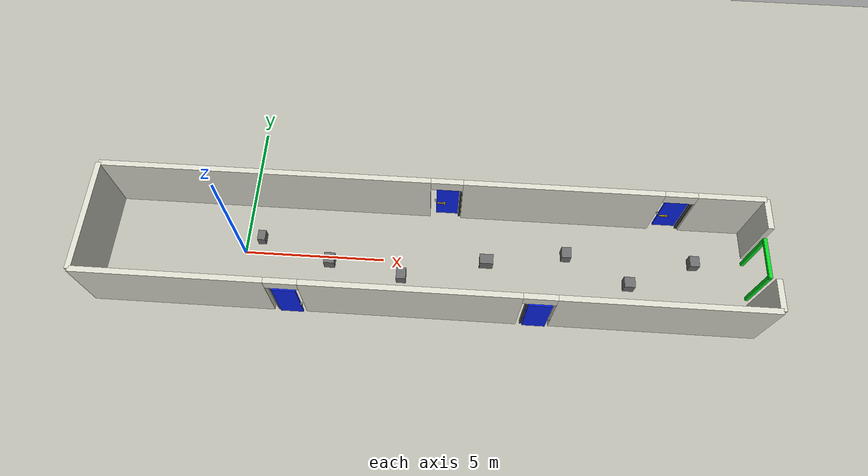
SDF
<?xml version='1.0' encoding='utf-8'?>
<sdf version="1.6">
  <world name="fire_corridor">
    <physics name="default_physics" type="ode">
      <max_step_size>0.001</max_step_size>
      <real_time_update_rate>1000</real_time_update_rate>
    </physics>
    <plugin name="gz::sim::systems::Physics" filename="gz-sim-physics-system" />
    <plugin name="gz::sim::systems::UserCommands" filename="gz-sim-user-commands-system" />
    <plugin name="gz::sim::systems::SceneBroadcaster" filename="gz-sim-scene-broadcaster-system" />
    <plugin name="gz::sim::systems::Sensors" filename="gz-sim-sensors-system">
      <render_engine>ogre2</render_engine>
    </plugin>
    <light type="directional" name="sun">
      <cast_shadows>true</cast_shadows>
      <pose>6 0 10 0 0 0</pose>
      <diffuse>0.9 0.9 0.9 1</diffuse>
      <specular>0.3 0.3 0.3 1</specular>
      <direction>-0.5 0.1 -1</direction>
    </light>
    <light type="point" name="light_mid">
      <pose>8 0 2.8 0 0 0</pose>
      <diffuse>0.8 0.8 0.8 1</diffuse>
      <specular>0.1 0.1 0.1 1</specular>
      <attenuation>
        <range>16</range>
        <linear>0.05</linear>
      </attenuation>
    </light>
    <model name="ground_plane">
      <static>true</static>
      <link name="link">
        <collision name="col">
          <geometry>
            <plane>
              <normal>0 0 1</normal>
              <size>30 10</size>
            </plane>
          </geometry>
        </collision>
        <visual name="vis">
          <geometry>
            <plane>
              <normal>0 0 1</normal>
              <size>30 10</size>
            </plane>
          </geometry>
          <material>
            <ambient>0.72 0.72 0.68 1</ambient>
            <diffuse>0.72 0.72 0.68 1</diffuse>
          </material>
        </visual>
      </link>
    </model>
    <model name="wall_south">
      <static>true</static>
      <pose>6.50 -2.00 1.25 0 0 0</pose>
      <link name="link">
        <collision name="collision_wall_0">
          <geometry>
            <box>
              <size>6.388571 0.200000 2.500000</size>
            </box>
          </geometry>
          <pose>-8.305714 0 0.000000 0 0 0</pose>
        </collision>
        <visual name="visual_wall_0">
          <geometry>
            <box>
              <size>6.388571 0.200000 2.500000</size>
            </box>
          </geometry>
          <material>
            <ambient>0.85 0.85 0.80 1</ambient>
            <diffuse>0.85 0.85 0.80 1</diffuse>
          </material>
          <pose>-8.305714 0 0.000000 0 0 0</pose>
        </visual>
        <collision name="collision_lintel_0">
          <geometry>
            <box>
              <size>1.116429 0.200000 0.450000</size>
            </box>
          </geometry>
          <pose>-4.553214 0 1.025000 0 0 0</pose>
        </collision>
        <visual name="visual_lintel_0">
          <geometry>
            <box>
              <size>1.116429 0.200000 0.450000</size>
            </box>
          </geometry>
          <material>
            <ambient>0.85 0.85 0.80 1</ambient>
            <diffuse>0.85 0.85 0.80 1</diffuse>
          </material>
          <pose>-4.553214 0 1.025000 0 0 0</pose>
        </visual>
        <collision name="collision_wall_1">
          <geometry>
            <box>
              <size>7.283571 0.200000 2.500000</size>
            </box>
          </geometry>
          <pose>-0.353214 0 0.000000 0 0 0</pose>
        </collision>
        <visual name="visual_wall_1">
          <geometry>
            <box>
              <size>7.283571 0.200000 2.500000</size>
            </box>
          </geometry>
          <material>
            <ambient>0.85 0.85 0.80 1</ambient>
            <diffuse>0.85 0.85 0.80 1</diffuse>
          </material>
          <pose>-0.353214 0 0.000000 0 0 0</pose>
        </visual>
        <collision name="collision_lintel_1">
          <geometry>
            <box>
              <size>1.116429 0.200000 0.450000</size>
            </box>
          </geometry>
          <pose>3.846786 0 1.025000 0 0 0</pose>
        </collision>
        <visual name="visual_lintel_1">
          <geometry>
            <box>
              <size>1.116429 0.200000 0.450000</size>
            </box>
          </geometry>
          <material>
            <ambient>0.85 0.85 0.80 1</ambient>
            <diffuse>0.85 0.85 0.80 1</diffuse>
          </material>
          <pose>3.846786 0 1.025000 0 0 0</pose>
        </visual>
        <collision name="collision_wall_end">
          <geometry>
            <box>
              <size>7.095000 0.200000 2.500000</size>
            </box>
          </geometry>
          <pose>7.952500 0 0.000000 0 0 0</pose>
        </collision>
        <visual name="visual_wall_end">
          <geometry>
            <box>
              <size>7.095000 0.200000 2.500000</size>
            </box>
          </geometry>
          <material>
            <ambient>0.85 0.85 0.80 1</ambient>
            <diffuse>0.85 0.85 0.80 1</diffuse>
          </material>
          <pose>7.952500 0 0.000000 0 0 0</pose>
        </visual>
      </link>
    </model>
    <model name="wall_north">
      <static>true</static>
      <pose>6.50 2.00 1.25 0 0 0</pose>
      <link name="link">
        <collision name="collision_wall_0">
          <geometry>
            <box>
              <size>11.588571 0.200000 2.500000</size>
            </box>
          </geometry>
          <pose>-5.705714 0 0.000000 0 0 0</pose>
        </collision>
        <visual name="visual_wall_0">
          <geometry>
            <box>
              <size>11.588571 0.200000 2.500000</size>
            </box>
          </geometry>
          <material>
            <ambient>0.85 0.85 0.80 1</ambient>
            <diffuse>0.85 0.85 0.80 1</diffuse>
          </material>
          <pose>-5.705714 0 0.000000 0 0 0</pose>
        </visual>
        <collision name="collision_lintel_0">
          <geometry>
            <box>
              <size>1.116429 0.200000 0.450000</size>
            </box>
          </geometry>
          <pose>0.646786 0 1.025000 0 0 0</pose>
        </collision>
        <visual name="visual_lintel_0">
          <geometry>
            <box>
              <size>1.116429 0.200000 0.450000</size>
            </box>
          </geometry>
          <material>
            <ambient>0.85 0.85 0.80 1</ambient>
            <diffuse>0.85 0.85 0.80 1</diffuse>
          </material>
          <pose>0.646786 0 1.025000 0 0 0</pose>
        </visual>
        <collision name="collision_wall_1">
          <geometry>
            <box>
              <size>6.883571 0.200000 2.500000</size>
            </box>
          </geometry>
          <pose>4.646786 0 0.000000 0 0 0</pose>
        </collision>
        <visual name="visual_wall_1">
          <geometry>
            <box>
              <size>6.883571 0.200000 2.500000</size>
            </box>
          </geometry>
          <material>
            <ambient>0.85 0.85 0.80 1</ambient>
            <diffuse>0.85 0.85 0.80 1</diffuse>
          </material>
          <pose>4.646786 0 0.000000 0 0 0</pose>
        </visual>
        <collision name="collision_lintel_1">
          <geometry>
            <box>
              <size>1.116429 0.200000 0.450000</size>
            </box>
          </geometry>
          <pose>8.646786 0 1.025000 0 0 0</pose>
        </collision>
        <visual name="visual_lintel_1">
          <geometry>
            <box>
              <size>1.116429 0.200000 0.450000</size>
            </box>
          </geometry>
          <material>
            <ambient>0.85 0.85 0.80 1</ambient>
            <diffuse>0.85 0.85 0.80 1</diffuse>
          </material>
          <pose>8.646786 0 1.025000 0 0 0</pose>
        </visual>
        <collision name="collision_wall_end">
          <geometry>
            <box>
              <size>2.295000 0.200000 2.500000</size>
            </box>
          </geometry>
          <pose>10.352500 0 0.000000 0 0 0</pose>
        </collision>
        <visual name="visual_wall_end">
          <geometry>
            <box>
              <size>2.295000 0.200000 2.500000</size>
            </box>
          </geometry>
          <material>
            <ambient>0.85 0.85 0.80 1</ambient>
            <diffuse>0.85 0.85 0.80 1</diffuse>
          </material>
          <pose>10.352500 0 0.000000 0 0 0</pose>
        </visual>
      </link>
    </model>
    <model name="wall_west">
      <static>true</static>
      <pose>-5.00 0.00 1.25 0 0 0</pose>
      <link name="link">
        <collision name="col">
          <geometry>
            <box>
              <size>0.200 4.000 2.500</size>
            </box>
          </geometry>
        </collision>
        <visual name="vis">
          <geometry>
            <box>
              <size>0.200 4.000 2.500</size>
            </box>
          </geometry>
          <material>
            <ambient>0.85 0.85 0.80 1</ambient>
            <diffuse>0.85 0.85 0.80 1</diffuse>
          </material>
        </visual>
      </link>
    </model>
    <model name="wall_east_upper">
      <static>true</static>
      <pose>18.00 1.45 1.25 0 0 0</pose>
      <link name="link">
        <collision name="col">
          <geometry>
            <box>
              <size>0.200 1.100 2.500</size>
            </box>
          </geometry>
        </collision>
        <visual name="vis">
          <geometry>
            <box>
              <size>0.200 1.100 2.500</size>
            </box>
          </geometry>
          <material>
            <ambient>0.85 0.85 0.80 1</ambient>
            <diffuse>0.85 0.85 0.80 1</diffuse>
          </material>
        </visual>
      </link>
    </model>
    <model name="wall_east_lower">
      <static>true</static>
      <pose>18.00 -1.45 1.25 0 0 0</pose>
      <link name="link">
        <collision name="col">
          <geometry>
            <box>
              <size>0.200 1.100 2.500</size>
            </box>
          </geometry>
        </collision>
        <visual name="vis">
          <geometry>
            <box>
              <size>0.200 1.100 2.500</size>
            </box>
          </geometry>
          <material>
            <ambient>0.85 0.85 0.80 1</ambient>
            <diffuse>0.85 0.85 0.80 1</diffuse>
          </material>
        </visual>
      </link>
    </model>
    <model name="door_red1">
      <static>true</static>
      <pose>4.80 -1.86 1.0 0 0 0</pose>
      <link name="link">
        <visual name="panel">
          <geometry>
            <box>
              <size>0.85 0.045 2.0</size>
            </box>
          </geometry>
          <material>
            <ambient>0.92 0.04 0.04 1</ambient>
            <diffuse>0.92 0.04 0.04 1</diffuse>
          </material>
        </visual>
      </link>
    </model>
    <model name="handle_red1">
      <static>true</static>
      <pose>5.04 -1.82 0.95 1.5708 0 0</pose>
      <link name="link">
        <visual name="handle">
          <geometry>
            <cylinder>
              <radius>0.018</radius>
              <length>0.13</length>
            </cylinder>
          </geometry>
          <material>
            <ambient>0.75 0.60 0.05 1</ambient>
            <diffuse>0.75 0.60 0.05 1</diffuse>
          </material>
        </visual>
      </link>
    </model>
    <model name="door_red2">
      <static>true</static>
      <pose>12.90 -1.86 1.0 0 0 0</pose>
      <link name="link">
        <visual name="panel">
          <geometry>
            <box>
              <size>0.85 0.045 2.0</size>
            </box>
          </geometry>
          <material>
            <ambient>0.92 0.04 0.04 1</ambient>
            <diffuse>0.92 0.04 0.04 1</diffuse>
          </material>
        </visual>
      </link>
    </model>
    <model name="handle_red2">
      <static>true</static>
      <pose>13.14 -1.82 0.95 1.5708 0 0</pose>
      <link name="link">
        <visual name="handle">
          <geometry>
            <cylinder>
              <radius>0.018</radius>
              <length>0.13</length>
            </cylinder>
          </geometry>
          <material>
            <ambient>0.75 0.60 0.05 1</ambient>
            <diffuse>0.75 0.60 0.05 1</diffuse>
          </material>
        </visual>
      </link>
    </model>
    <model name="exit_green">
      <static>true</static>
      <pose>17.92 0 1.0 0 0 0</pose>
      <link name="link">
        <visual name="jamb_left">
          <pose>0.0 0.66 0.0 0.0 0.0 0.0</pose>
          <geometry>
            <box>
              <size>0.12 0.12 2.0</size>
            </box>
          </geometry>
          <material>
            <ambient>0.02 0.85 0.12 1</ambient>
            <diffuse>0.02 0.85 0.12 1</diffuse>
          </material>
        </visual>
        <collision name="jamb_left">
          <pose>0.0 0.66 0.0 0.0 0.0 0.0</pose>
          <geometry>
            <box>
              <size>0.12 0.12 2.0</size>
            </box>
          </geometry>
        </collision>
        <visual name="jamb_right">
          <pose>0.0 -0.66 0.0 0.0 0.0 0.0</pose>
          <geometry>
            <box>
              <size>0.12 0.12 2.0</size>
            </box>
          </geometry>
          <material>
            <ambient>0.02 0.85 0.12 1</ambient>
            <diffuse>0.02 0.85 0.12 1</diffuse>
          </material>
        </visual>
        <collision name="jamb_right">
          <pose>0.0 -0.66 0.0 0.0 0.0 0.0</pose>
          <geometry>
            <box>
              <size>0.12 0.12 2.0</size>
            </box>
          </geometry>
        </collision>
        <visual name="lintel">
          <pose>0.0 0.0 1.06 0.0 0.0 0.0</pose>
          <geometry>
            <box>
              <size>0.12 1.44 0.12</size>
            </box>
          </geometry>
          <material>
            <ambient>0.02 0.85 0.12 1</ambient>
            <diffuse>0.02 0.85 0.12 1</diffuse>
          </material>
        </visual>
        <collision name="lintel">
          <pose>0.0 0.0 1.06 0.0 0.0 0.0</pose>
          <geometry>
            <box>
              <size>0.12 1.44 0.12</size>
            </box>
          </geometry>
        </collision>
      </link>
    </model>
    <model name="world3_obs_01">
      <static>true</static>
      <pose>0.55 0.55 0.20 0 0 0</pose>
      <link name="link">
        <collision name="col">
          <geometry>
            <box>
              <size>0.280 0.380 0.400</size>
            </box>
          </geometry>
        </collision>
        <visual name="vis">
          <geometry>
            <box>
              <size>0.280 0.380 0.400</size>
            </box>
          </geometry>
          <material>
            <ambient>0.42 0.42 0.42 1</ambient>
            <diffuse>0.42 0.42 0.42 1</diffuse>
          </material>
        </visual>
      </link>
    </model>
    <model name="world3_obs_02">
      <static>true</static>
      <pose>3.10 -0.20 0.22 0 0 0</pose>
      <link name="link">
        <collision name="col">
          <geometry>
            <box>
              <size>0.380 0.400 0.440</size>
            </box>
          </geometry>
        </collision>
        <visual name="vis">
          <geometry>
            <box>
              <size>0.380 0.400 0.440</size>
            </box>
          </geometry>
          <material>
            <ambient>0.42 0.42 0.42 1</ambient>
            <diffuse>0.42 0.42 0.42 1</diffuse>
          </material>
        </visual>
      </link>
    </model>
    <model name="world3_obs_03">
      <static>true</static>
      <pose>5.70 -0.62 0.21 0 0 0</pose>
      <link name="link">
        <collision name="col">
          <geometry>
            <box>
              <size>0.340 0.420 0.420</size>
            </box>
          </geometry>
        </collision>
        <visual name="vis">
          <geometry>
            <box>
              <size>0.340 0.420 0.420</size>
            </box>
          </geometry>
          <material>
            <ambient>0.42 0.42 0.42 1</ambient>
            <diffuse>0.42 0.42 0.42 1</diffuse>
          </material>
        </visual>
      </link>
    </model>
    <model name="world3_obs_04">
      <static>true</static>
      <pose>8.70 0.10 0.23 0 0 0</pose>
      <link name="link">
        <collision name="col">
          <geometry>
            <box>
              <size>0.480 0.360 0.460</size>
            </box>
          </geometry>
        </collision>
        <visual name="vis">
          <geometry>
            <box>
              <size>0.480 0.360 0.460</size>
            </box>
          </geometry>
          <material>
            <ambient>0.42 0.42 0.42 1</ambient>
            <diffuse>0.42 0.42 0.42 1</diffuse>
          </material>
        </visual>
      </link>
    </model>
    <model name="world3_obs_05">
      <static>true</static>
      <pose>11.55 0.55 0.21 0 0 0</pose>
      <link name="link">
        <collision name="col">
          <geometry>
            <box>
              <size>0.340 0.400 0.420</size>
            </box>
          </geometry>
        </collision>
        <visual name="vis">
          <geometry>
            <box>
              <size>0.340 0.400 0.420</size>
            </box>
          </geometry>
          <material>
            <ambient>0.42 0.42 0.42 1</ambient>
            <diffuse>0.42 0.42 0.42 1</diffuse>
          </material>
        </visual>
      </link>
    </model>
    <model name="world3_obs_06">
      <static>true</static>
      <pose>13.75 -0.45 0.21 0 0 0</pose>
      <link name="link">
        <collision name="col">
          <geometry>
            <box>
              <size>0.380 0.380 0.420</size>
            </box>
          </geometry>
        </collision>
        <visual name="vis">
          <geometry>
            <box>
              <size>0.380 0.380 0.420</size>
            </box>
          </geometry>
          <material>
            <ambient>0.42 0.42 0.42 1</ambient>
            <diffuse>0.42 0.42 0.42 1</diffuse>
          </material>
        </visual>
      </link>
    </model>
    <model name="world3_obs_07">
      <static>true</static>
      <pose>16.10 0.50 0.20 0 0 0</pose>
      <link name="link">
        <collision name="col">
          <geometry>
            <box>
              <size>0.340 0.400 0.400</size>
            </box>
          </geometry>
        </collision>
        <visual name="vis">
          <geometry>
            <box>
              <size>0.340 0.400 0.400</size>
            </box>
          </geometry>
          <material>
            <ambient>0.42 0.42 0.42 1</ambient>
            <diffuse>0.42 0.42 0.42 1</diffuse>
          </material>
        </visual>
      </link>
    </model>
    <model name="door_blue1">
      <pose>1.6 -2.1 0 0 0 -1.5707963267948966</pose>
      <self_collide>true</self_collide>
      <link name="frame">
        <inertial>
          <mass>20</mass>
          <inertia>
            <ixx>1</ixx>
            <iyy>1</iyy>
            <izz>1</izz>
          </inertia>
        </inertial>
        <collision name="hinge_post_collision">
          <pose>-0.08 -0.05 1.0 0 0 0</pose>
          <geometry>
            <box>
              <size>0.10 0.08 2.05</size>
            </box>
          </geometry>
        </collision>
        <visual name="hinge_post">
          <pose>-0.08 -0.05 1.0 0 0 0</pose>
          <geometry>
            <box>
              <size>0.10 0.08 2.05</size>
            </box>
          </geometry>
          <material>
            <ambient>0.12 0.12 0.12 1</ambient>
            <diffuse>0.12 0.12 0.12 1</diffuse>
          </material>
        </visual>
        <collision name="latch_strike_collision">
          <pose>0.055 0.84 0.83 0 0 0</pose>
          <geometry>
            <box>
              <size>0.04 0.08 0.05</size>
            </box>
          </geometry>
          <surface>
            <friction>
              <ode>
                <mu>0.7</mu>
                <mu2>0.7</mu2>
              </ode>
            </friction>
            <contact>
              <ode>
                <kp>800000</kp>
                <kd>40</kd>
              </ode>
            </contact>
          </surface>
        </collision>
        <visual name="latch_strike_visual">
          <pose>0.055 0.84 0.83 0 0 0</pose>
          <geometry>
            <box>
              <size>0.04 0.08 0.05</size>
            </box>
          </geometry>
          <material>
            <ambient>0.55 0.55 0.55 1</ambient>
            <diffuse>0.55 0.55 0.55 1</diffuse>
          </material>
        </visual>
        <sensor name="jamb_contacts" type="contact">
          <contact>
            <collision>hinge_post_collision</collision>
            <topic>/proof/contact/door_blue1/jamb</topic>
          </contact>
          <always_on>true</always_on>
          <update_rate>20</update_rate>
        </sensor>
        <sensor name="strike_contacts" type="contact">
          <contact>
            <collision>latch_strike_collision</collision>
            <topic>/proof/contact/door_blue1/strike</topic>
          </contact>
          <always_on>true</always_on>
          <update_rate>20</update_rate>
        </sensor>
      </link>
      <joint name="frame_fixed" type="fixed">
        <parent>world</parent>
        <child>frame</child>
      </joint>
      <link name="panel">
        <pose>0 0.40 1.0 0 0 0</pose>
        <inertial>
          <mass>18.0</mass>
          <inertia>
            <ixx>6.96</ixx>
            <iyy>6.01</iyy>
            <izz>0.97</izz>
          </inertia>
        </inertial>
        <collision name="panel_collision">
          <geometry>
            <box>
              <size>0.06 0.80 1.98</size>
            </box>
          </geometry>
          <surface>
            <friction>
              <ode>
                <mu>1.5</mu>
                <mu2>1.5</mu2>
              </ode>
            </friction>
            <contact>
              <ode>
                <kp>600000</kp>
                <kd>30</kd>
              </ode>
            </contact>
          </surface>
        </collision>
        <visual name="panel_visual">
          <geometry>
            <box>
              <size>0.06 0.80 1.98</size>
            </box>
          </geometry>
          <material>
            <ambient>0.04 0.14 0.92 1</ambient>
            <diffuse>0.04 0.14 0.92 1</diffuse>
          </material>
        </visual>
        <collision name="handle_mount_collision">
          <pose>-0.078 0.11 -0.17 0 0 0</pose>
          <geometry>
            <box>
              <size>0.05 0.06 0.10</size>
            </box>
          </geometry>
          <surface>
            <friction>
              <ode>
                <mu>0.8</mu>
                <mu2>0.8</mu2>
              </ode>
            </friction>
            <contact>
              <ode>
                <kp>800000</kp>
                <kd>40</kd>
              </ode>
            </contact>
          </surface>
        </collision>
        <visual name="handle_mount_visual">
          <pose>-0.078 0.11 -0.17 0 0 0</pose>
          <geometry>
            <box>
              <size>0.05 0.06 0.10</size>
            </box>
          </geometry>
          <material>
            <ambient>0.8 0.65 0.05 1</ambient>
            <diffuse>0.8 0.65 0.05 1</diffuse>
          </material>
        </visual>
        <sensor name="panel_contact_diagnostic" type="contact">
          <contact>
            <collision>panel_collision</collision>
            <topic>/proof/contact/door_blue1/panel</topic>
          </contact>
          <always_on>true</always_on>
          <update_rate>20</update_rate>
        </sensor>
      </link>
      <link name="lever">
        <pose>-0.075 0.51 0.83 0 0 0</pose>
        <inertial>
          <mass>0.22</mass>
          <inertia>
            <ixx>0.0013</ixx>
            <iyy>0.00015</iyy>
            <izz>0.0013</izz>
          </inertia>
        </inertial>
        <collision name="lever_collision">
          <pose>0 0.13 0 1.5708 0 0</pose>
          <geometry>
            <cylinder>
              <radius>0.026</radius>
              <length>0.26</length>
            </cylinder>
          </geometry>
          <surface>
            <friction>
              <ode>
                <mu>5.0</mu>
                <mu2>5.0</mu2>
              </ode>
            </friction>
            <contact>
              <ode>
                <kp>800000</kp>
                <kd>40</kd>
              </ode>
            </contact>
          </surface>
        </collision>
        <visual name="lever_visual">
          <pose>0 0.13 0 1.5708 0 0</pose>
          <geometry>
            <cylinder>
              <radius>0.026</radius>
              <length>0.26</length>
            </cylinder>
          </geometry>
          <material>
            <ambient>0.8 0.65 0.05 1</ambient>
            <diffuse>0.8 0.65 0.05 1</diffuse>
          </material>
        </visual>
        <collision name="latch_bolt_collision">
          <pose>0.075 0.32 0 0 0 0</pose>
          <geometry>
            <box>
              <size>0.05 0.05 0.03</size>
            </box>
          </geometry>
          <surface>
            <friction>
              <ode>
                <mu>0.35</mu>
                <mu2>0.35</mu2>
              </ode>
            </friction>
            <contact>
              <ode>
                <kp>800000</kp>
                <kd>40</kd>
              </ode>
            </contact>
          </surface>
        </collision>
        <visual name="latch_bolt_visual">
          <pose>0.075 0.32 0 0 0 0</pose>
          <geometry>
            <box>
              <size>0.05 0.05 0.03</size>
            </box>
          </geometry>
          <material>
            <ambient>0.7 0.7 0.7 1</ambient>
            <diffuse>0.7 0.7 0.7 1</diffuse>
          </material>
        </visual>
        <sensor name="lever_contact_diagnostic" type="contact">
          <contact>
            <collision>lever_collision</collision>
            <topic>/proof/contact/door_blue1/lever</topic>
          </contact>
          <always_on>true</always_on>
          <update_rate>20</update_rate>
        </sensor>
        <sensor name="latch_contact_diagnostic" type="contact">
          <contact>
            <collision>latch_bolt_collision</collision>
            <topic>/proof/contact/door_blue1/latch</topic>
          </contact>
          <always_on>true</always_on>
          <update_rate>20</update_rate>
        </sensor>
      </link>
      <joint name="lever_joint" type="revolute">
        <pose>0 0 0 0 0 0</pose>
        <parent>panel</parent>
        <child>lever</child>
        <axis>
          <xyz>1 0 0</xyz>
          <limit>
            <lower>-0.55</lower>
            <upper>0.10</upper>
            <effort>25</effort>
            <velocity>1.2</velocity>
          </limit>
          <dynamics>
            <damping>0.40</damping>
            <friction>0.04</friction>
            <spring_reference>0.0</spring_reference>
            <spring_stiffness>6.0</spring_stiffness>
          </dynamics>
        </axis>
      </joint>
      <joint name="door_hinge" type="revolute">
        <pose>0 -0.40 0 0 0 0</pose>
        <parent>frame</parent>
        <child>panel</child>
        <axis>
          <xyz>0 0 1</xyz>
          <limit>
            <lower>-2.25</lower>
            <upper>0.05</upper>
            <effort>120</effort>
            <velocity>2.0</velocity>
          </limit>
          <dynamics>
            <damping>0.80</damping>
            <friction>2.0</friction>
          </dynamics>
        </axis>
      </joint>
      <plugin filename="gz-sim-joint-state-publisher-system" name="gz::sim::systems::JointStatePublisher">
        <topic>/evaluation/door_blue1/joints</topic>
      </plugin>
    </model>
    <model name="door_blue2">
      <pose>7.6000000000000005 2.1 0 0 0 1.5707963267948966</pose>
      <self_collide>true</self_collide>
      <link name="frame">
        <inertial>
          <mass>20</mass>
          <inertia>
            <ixx>1</ixx>
            <iyy>1</iyy>
            <izz>1</izz>
          </inertia>
        </inertial>
        <collision name="hinge_post_collision">
          <pose>-0.08 -0.05 1.0 0 0 0</pose>
          <geometry>
            <box>
              <size>0.10 0.08 2.05</size>
            </box>
          </geometry>
        </collision>
        <visual name="hinge_post">
          <pose>-0.08 -0.05 1.0 0 0 0</pose>
          <geometry>
            <box>
              <size>0.10 0.08 2.05</size>
            </box>
          </geometry>
          <material>
            <ambient>0.12 0.12 0.12 1</ambient>
            <diffuse>0.12 0.12 0.12 1</diffuse>
          </material>
        </visual>
        <collision name="latch_strike_collision">
          <pose>0.055 0.84 0.83 0 0 0</pose>
          <geometry>
            <box>
              <size>0.04 0.08 0.05</size>
            </box>
          </geometry>
          <surface>
            <friction>
              <ode>
                <mu>0.7</mu>
                <mu2>0.7</mu2>
              </ode>
            </friction>
            <contact>
              <ode>
                <kp>800000</kp>
                <kd>40</kd>
              </ode>
            </contact>
          </surface>
        </collision>
        <visual name="latch_strike_visual">
          <pose>0.055 0.84 0.83 0 0 0</pose>
          <geometry>
            <box>
              <size>0.04 0.08 0.05</size>
            </box>
          </geometry>
          <material>
            <ambient>0.55 0.55 0.55 1</ambient>
            <diffuse>0.55 0.55 0.55 1</diffuse>
          </material>
        </visual>
        <sensor name="jamb_contacts" type="contact">
          <contact>
            <collision>hinge_post_collision</collision>
            <topic>/proof/contact/door_blue2/jamb</topic>
          </contact>
          <always_on>true</always_on>
          <update_rate>20</update_rate>
        </sensor>
        <sensor name="strike_contacts" type="contact">
          <contact>
            <collision>latch_strike_collision</collision>
            <topic>/proof/contact/door_blue2/strike</topic>
          </contact>
          <always_on>true</always_on>
          <update_rate>20</update_rate>
        </sensor>
      </link>
      <joint name="frame_fixed" type="fixed">
        <parent>world</parent>
        <child>frame</child>
      </joint>
      <link name="panel">
        <pose>0 0.40 1.0 0 0 0</pose>
        <inertial>
          <mass>18.0</mass>
          <inertia>
            <ixx>6.96</ixx>
            <iyy>6.01</iyy>
            <izz>0.97</izz>
          </inertia>
        </inertial>
        <collision name="panel_collision">
          <geometry>
            <box>
              <size>0.06 0.80 1.98</size>
            </box>
          </geometry>
          <surface>
            <friction>
              <ode>
                <mu>1.5</mu>
                <mu2>1.5</mu2>
              </ode>
            </friction>
            <contact>
              <ode>
                <kp>600000</kp>
                <kd>30</kd>
              </ode>
            </contact>
          </surface>
        </collision>
        <visual name="panel_visual">
          <geometry>
            <box>
              <size>0.06 0.80 1.98</size>
            </box>
          </geometry>
          <material>
            <ambient>0.04 0.14 0.92 1</ambient>
            <diffuse>0.04 0.14 0.92 1</diffuse>
          </material>
        </visual>
        <collision name="handle_mount_collision">
          <pose>-0.078 0.11 -0.17 0 0 0</pose>
          <geometry>
            <box>
              <size>0.05 0.06 0.10</size>
            </box>
          </geometry>
          <surface>
            <friction>
              <ode>
                <mu>0.8</mu>
                <mu2>0.8</mu2>
              </ode>
            </friction>
            <contact>
              <ode>
                <kp>800000</kp>
                <kd>40</kd>
              </ode>
            </contact>
          </surface>
        </collision>
        <visual name="handle_mount_visual">
          <pose>-0.078 0.11 -0.17 0 0 0</pose>
          <geometry>
            <box>
              <size>0.05 0.06 0.10</size>
            </box>
          </geometry>
          <material>
            <ambient>0.8 0.65 0.05 1</ambient>
            <diffuse>0.8 0.65 0.05 1</diffuse>
          </material>
        </visual>
        <sensor name="panel_contact_diagnostic" type="contact">
          <contact>
            <collision>panel_collision</collision>
            <topic>/proof/contact/door_blue2/panel</topic>
          </contact>
          <always_on>true</always_on>
          <update_rate>20</update_rate>
        </sensor>
      </link>
      <link name="lever">
        <pose>-0.075 0.51 0.83 0 0 0</pose>
        <inertial>
          <mass>0.22</mass>
          <inertia>
            <ixx>0.0013</ixx>
            <iyy>0.00015</iyy>
            <izz>0.0013</izz>
          </inertia>
        </inertial>
        <collision name="lever_collision">
          <pose>0 0.13 0 1.5708 0 0</pose>
          <geometry>
            <cylinder>
              <radius>0.026</radius>
              <length>0.26</length>
            </cylinder>
          </geometry>
          <surface>
            <friction>
              <ode>
                <mu>5.0</mu>
                <mu2>5.0</mu2>
              </ode>
            </friction>
            <contact>
              <ode>
                <kp>800000</kp>
                <kd>40</kd>
              </ode>
            </contact>
          </surface>
        </collision>
        <visual name="lever_visual">
          <pose>0 0.13 0 1.5708 0 0</pose>
          <geometry>
            <cylinder>
              <radius>0.026</radius>
              <length>0.26</length>
            </cylinder>
          </geometry>
          <material>
            <ambient>0.8 0.65 0.05 1</ambient>
            <diffuse>0.8 0.65 0.05 1</diffuse>
          </material>
        </visual>
        <collision name="latch_bolt_collision">
          <pose>0.075 0.32 0 0 0 0</pose>
          <geometry>
            <box>
              <size>0.05 0.05 0.03</size>
            </box>
          </geometry>
          <surface>
            <friction>
              <ode>
                <mu>0.35</mu>
                <mu2>0.35</mu2>
              </ode>
            </friction>
            <contact>
              <ode>
                <kp>800000</kp>
                <kd>40</kd>
              </ode>
            </contact>
          </surface>
        </collision>
        <visual name="latch_bolt_visual">
          <pose>0.075 0.32 0 0 0 0</pose>
          <geometry>
            <box>
              <size>0.05 0.05 0.03</size>
            </box>
          </geometry>
          <material>
            <ambient>0.7 0.7 0.7 1</ambient>
            <diffuse>0.7 0.7 0.7 1</diffuse>
          </material>
        </visual>
        <sensor name="lever_contact_diagnostic" type="contact">
          <contact>
            <collision>lever_collision</collision>
            <topic>/proof/contact/door_blue2/lever</topic>
          </contact>
          <always_on>true</always_on>
          <update_rate>20</update_rate>
        </sensor>
        <sensor name="latch_contact_diagnostic" type="contact">
          <contact>
            <collision>latch_bolt_collision</collision>
            <topic>/proof/contact/door_blue2/latch</topic>
          </contact>
          <always_on>true</always_on>
          <update_rate>20</update_rate>
        </sensor>
      </link>
      <joint name="lever_joint" type="revolute">
        <pose>0 0 0 0 0 0</pose>
        <parent>panel</parent>
        <child>lever</child>
        <axis>
          <xyz>1 0 0</xyz>
          <limit>
            <lower>-0.55</lower>
            <upper>0.10</upper>
            <effort>25</effort>
            <velocity>1.2</velocity>
          </limit>
          <dynamics>
            <damping>0.40</damping>
            <friction>0.04</friction>
            <spring_reference>0.0</spring_reference>
            <spring_stiffness>6.0</spring_stiffness>
          </dynamics>
        </axis>
      </joint>
      <joint name="door_hinge" type="revolute">
        <pose>0 -0.40 0 0 0 0</pose>
        <parent>frame</parent>
        <child>panel</child>
        <axis>
          <xyz>0 0 1</xyz>
          <limit>
            <lower>-2.25</lower>
            <upper>0.05</upper>
            <effort>120</effort>
            <velocity>2.0</velocity>
          </limit>
          <dynamics>
            <damping>0.80</damping>
            <friction>2.0</friction>
          </dynamics>
        </axis>
      </joint>
      <plugin filename="gz-sim-joint-state-publisher-system" name="gz::sim::systems::JointStatePublisher">
        <topic>/evaluation/door_blue2/joints</topic>
      </plugin>
    </model>
    <model name="door_blue3">
      <pose>10.0 -2.1 0 0 0 -1.5707963267948966</pose>
      <self_collide>true</self_collide>
      <link name="frame">
        <inertial>
          <mass>20</mass>
          <inertia>
            <ixx>1</ixx>
            <iyy>1</iyy>
            <izz>1</izz>
          </inertia>
        </inertial>
        <collision name="hinge_post_collision">
          <pose>-0.08 -0.05 1.0 0 0 0</pose>
          <geometry>
            <box>
              <size>0.10 0.08 2.05</size>
            </box>
          </geometry>
        </collision>
        <visual name="hinge_post">
          <pose>-0.08 -0.05 1.0 0 0 0</pose>
          <geometry>
            <box>
              <size>0.10 0.08 2.05</size>
            </box>
          </geometry>
          <material>
            <ambient>0.12 0.12 0.12 1</ambient>
            <diffuse>0.12 0.12 0.12 1</diffuse>
          </material>
        </visual>
        <collision name="latch_strike_collision">
          <pose>0.055 0.84 0.83 0 0 0</pose>
          <geometry>
            <box>
              <size>0.04 0.08 0.05</size>
            </box>
          </geometry>
          <surface>
            <friction>
              <ode>
                <mu>0.7</mu>
                <mu2>0.7</mu2>
              </ode>
            </friction>
            <contact>
              <ode>
                <kp>800000</kp>
                <kd>40</kd>
              </ode>
            </contact>
          </surface>
        </collision>
        <visual name="latch_strike_visual">
          <pose>0.055 0.84 0.83 0 0 0</pose>
          <geometry>
            <box>
              <size>0.04 0.08 0.05</size>
            </box>
          </geometry>
          <material>
            <ambient>0.55 0.55 0.55 1</ambient>
            <diffuse>0.55 0.55 0.55 1</diffuse>
          </material>
        </visual>
        <sensor name="jamb_contacts" type="contact">
          <contact>
            <collision>hinge_post_collision</collision>
            <topic>/proof/contact/door_blue3/jamb</topic>
          </contact>
          <always_on>true</always_on>
          <update_rate>20</update_rate>
        </sensor>
        <sensor name="strike_contacts" type="contact">
          <contact>
            <collision>latch_strike_collision</collision>
            <topic>/proof/contact/door_blue3/strike</topic>
          </contact>
          <always_on>true</always_on>
          <update_rate>20</update_rate>
        </sensor>
      </link>
      <joint name="frame_fixed" type="fixed">
        <parent>world</parent>
        <child>frame</child>
      </joint>
      <link name="panel">
        <pose>0 0.40 1.0 0 0 0</pose>
        <inertial>
          <mass>18.0</mass>
          <inertia>
            <ixx>6.96</ixx>
            <iyy>6.01</iyy>
            <izz>0.97</izz>
          </inertia>
        </inertial>
        <collision name="panel_collision">
          <geometry>
            <box>
              <size>0.06 0.80 1.98</size>
            </box>
          </geometry>
          <surface>
            <friction>
              <ode>
                <mu>1.5</mu>
                <mu2>1.5</mu2>
              </ode>
            </friction>
            <contact>
              <ode>
                <kp>600000</kp>
                <kd>30</kd>
              </ode>
            </contact>
          </surface>
        </collision>
        <visual name="panel_visual">
          <geometry>
            <box>
              <size>0.06 0.80 1.98</size>
            </box>
          </geometry>
          <material>
            <ambient>0.04 0.14 0.92 1</ambient>
            <diffuse>0.04 0.14 0.92 1</diffuse>
          </material>
        </visual>
        <collision name="handle_mount_collision">
          <pose>-0.078 0.11 -0.17 0 0 0</pose>
          <geometry>
            <box>
              <size>0.05 0.06 0.10</size>
            </box>
          </geometry>
          <surface>
            <friction>
              <ode>
                <mu>0.8</mu>
                <mu2>0.8</mu2>
              </ode>
            </friction>
            <contact>
              <ode>
                <kp>800000</kp>
                <kd>40</kd>
              </ode>
            </contact>
          </surface>
        </collision>
        <visual name="handle_mount_visual">
          <pose>-0.078 0.11 -0.17 0 0 0</pose>
          <geometry>
            <box>
              <size>0.05 0.06 0.10</size>
            </box>
          </geometry>
          <material>
            <ambient>0.8 0.65 0.05 1</ambient>
            <diffuse>0.8 0.65 0.05 1</diffuse>
          </material>
        </visual>
        <sensor name="panel_contact_diagnostic" type="contact">
          <contact>
            <collision>panel_collision</collision>
            <topic>/proof/contact/door_blue3/panel</topic>
          </contact>
          <always_on>true</always_on>
          <update_rate>20</update_rate>
        </sensor>
      </link>
      <link name="lever">
        <pose>-0.075 0.51 0.83 0 0 0</pose>
        <inertial>
          <mass>0.22</mass>
          <inertia>
            <ixx>0.0013</ixx>
            <iyy>0.00015</iyy>
            <izz>0.0013</izz>
          </inertia>
        </inertial>
        <collision name="lever_collision">
          <pose>0 0.13 0 1.5708 0 0</pose>
          <geometry>
            <cylinder>
              <radius>0.026</radius>
              <length>0.26</length>
            </cylinder>
          </geometry>
          <surface>
            <friction>
              <ode>
                <mu>5.0</mu>
                <mu2>5.0</mu2>
              </ode>
            </friction>
            <contact>
              <ode>
                <kp>800000</kp>
                <kd>40</kd>
              </ode>
            </contact>
          </surface>
        </collision>
        <visual name="lever_visual">
          <pose>0 0.13 0 1.5708 0 0</pose>
          <geometry>
            <cylinder>
              <radius>0.026</radius>
              <length>0.26</length>
            </cylinder>
          </geometry>
          <material>
            <ambient>0.8 0.65 0.05 1</ambient>
            <diffuse>0.8 0.65 0.05 1</diffuse>
          </material>
        </visual>
        <collision name="latch_bolt_collision">
          <pose>0.075 0.32 0 0 0 0</pose>
          <geometry>
            <box>
              <size>0.05 0.05 0.03</size>
            </box>
          </geometry>
          <surface>
            <friction>
              <ode>
                <mu>0.35</mu>
                <mu2>0.35</mu2>
              </ode>
            </friction>
            <contact>
              <ode>
                <kp>800000</kp>
                <kd>40</kd>
              </ode>
            </contact>
          </surface>
        </collision>
        <visual name="latch_bolt_visual">
          <pose>0.075 0.32 0 0 0 0</pose>
          <geometry>
            <box>
              <size>0.05 0.05 0.03</size>
            </box>
          </geometry>
          <material>
            <ambient>0.7 0.7 0.7 1</ambient>
            <diffuse>0.7 0.7 0.7 1</diffuse>
          </material>
        </visual>
        <sensor name="lever_contact_diagnostic" type="contact">
          <contact>
            <collision>lever_collision</collision>
            <topic>/proof/contact/door_blue3/lever</topic>
          </contact>
          <always_on>true</always_on>
          <update_rate>20</update_rate>
        </sensor>
        <sensor name="latch_contact_diagnostic" type="contact">
          <contact>
            <collision>latch_bolt_collision</collision>
            <topic>/proof/contact/door_blue3/latch</topic>
          </contact>
          <always_on>true</always_on>
          <update_rate>20</update_rate>
        </sensor>
      </link>
      <joint name="lever_joint" type="revolute">
        <pose>0 0 0 0 0 0</pose>
        <parent>panel</parent>
        <child>lever</child>
        <axis>
          <xyz>1 0 0</xyz>
          <limit>
            <lower>-0.55</lower>
            <upper>0.10</upper>
            <effort>25</effort>
            <velocity>1.2</velocity>
          </limit>
          <dynamics>
            <damping>0.40</damping>
            <friction>0.04</friction>
            <spring_reference>0.0</spring_reference>
            <spring_stiffness>6.0</spring_stiffness>
          </dynamics>
        </axis>
      </joint>
      <joint name="door_hinge" type="revolute">
        <pose>0 -0.40 0 0 0 0</pose>
        <parent>frame</parent>
        <child>panel</child>
        <axis>
          <xyz>0 0 1</xyz>
          <limit>
            <lower>-2.25</lower>
            <upper>0.05</upper>
            <effort>120</effort>
            <velocity>2.0</velocity>
          </limit>
          <dynamics>
            <damping>0.80</damping>
            <friction>2.0</friction>
          </dynamics>
        </axis>
      </joint>
      <plugin filename="gz-sim-joint-state-publisher-system" name="gz::sim::systems::JointStatePublisher">
        <topic>/evaluation/door_blue3/joints</topic>
      </plugin>
    </model>
    <model name="door_blue4">
      <pose>15.6 2.1 0 0 0 1.5707963267948966</pose>
      <self_collide>true</self_collide>
      <link name="frame">
        <inertial>
          <mass>20</mass>
          <inertia>
            <ixx>1</ixx>
            <iyy>1</iyy>
            <izz>1</izz>
          </inertia>
        </inertial>
        <collision name="hinge_post_collision">
          <pose>-0.08 -0.05 1.0 0 0 0</pose>
          <geometry>
            <box>
              <size>0.10 0.08 2.05</size>
            </box>
          </geometry>
        </collision>
        <visual name="hinge_post">
          <pose>-0.08 -0.05 1.0 0 0 0</pose>
          <geometry>
            <box>
              <size>0.10 0.08 2.05</size>
            </box>
          </geometry>
          <material>
            <ambient>0.12 0.12 0.12 1</ambient>
            <diffuse>0.12 0.12 0.12 1</diffuse>
          </material>
        </visual>
        <collision name="latch_strike_collision">
          <pose>0.055 0.84 0.83 0 0 0</pose>
          <geometry>
            <box>
              <size>0.04 0.08 0.05</size>
            </box>
          </geometry>
          <surface>
            <friction>
              <ode>
                <mu>0.7</mu>
                <mu2>0.7</mu2>
              </ode>
            </friction>
            <contact>
              <ode>
                <kp>800000</kp>
                <kd>40</kd>
              </ode>
            </contact>
          </surface>
        </collision>
        <visual name="latch_strike_visual">
          <pose>0.055 0.84 0.83 0 0 0</pose>
          <geometry>
            <box>
              <size>0.04 0.08 0.05</size>
            </box>
          </geometry>
          <material>
            <ambient>0.55 0.55 0.55 1</ambient>
            <diffuse>0.55 0.55 0.55 1</diffuse>
          </material>
        </visual>
        <sensor name="jamb_contacts" type="contact">
          <contact>
            <collision>hinge_post_collision</collision>
            <topic>/proof/contact/door_blue4/jamb</topic>
          </contact>
          <always_on>true</always_on>
          <update_rate>20</update_rate>
        </sensor>
        <sensor name="strike_contacts" type="contact">
          <contact>
            <collision>latch_strike_collision</collision>
            <topic>/proof/contact/door_blue4/strike</topic>
          </contact>
          <always_on>true</always_on>
          <update_rate>20</update_rate>
        </sensor>
      </link>
      <joint name="frame_fixed" type="fixed">
        <parent>world</parent>
        <child>frame</child>
      </joint>
      <link name="panel">
        <pose>0 0.40 1.0 0 0 0</pose>
        <inertial>
          <mass>18.0</mass>
          <inertia>
            <ixx>6.96</ixx>
            <iyy>6.01</iyy>
            <izz>0.97</izz>
          </inertia>
        </inertial>
        <collision name="panel_collision">
          <geometry>
            <box>
              <size>0.06 0.80 1.98</size>
            </box>
          </geometry>
          <surface>
            <friction>
              <ode>
                <mu>1.5</mu>
                <mu2>1.5</mu2>
              </ode>
            </friction>
            <contact>
              <ode>
                <kp>600000</kp>
                <kd>30</kd>
              </ode>
            </contact>
          </surface>
        </collision>
        <visual name="panel_visual">
          <geometry>
            <box>
              <size>0.06 0.80 1.98</size>
            </box>
          </geometry>
          <material>
            <ambient>0.04 0.14 0.92 1</ambient>
            <diffuse>0.04 0.14 0.92 1</diffuse>
          </material>
        </visual>
        <collision name="handle_mount_collision">
          <pose>-0.078 0.11 -0.17 0 0 0</pose>
          <geometry>
            <box>
              <size>0.05 0.06 0.10</size>
            </box>
          </geometry>
          <surface>
            <friction>
              <ode>
                <mu>0.8</mu>
                <mu2>0.8</mu2>
              </ode>
            </friction>
            <contact>
              <ode>
                <kp>800000</kp>
                <kd>40</kd>
              </ode>
            </contact>
          </surface>
        </collision>
        <visual name="handle_mount_visual">
          <pose>-0.078 0.11 -0.17 0 0 0</pose>
          <geometry>
            <box>
              <size>0.05 0.06 0.10</size>
            </box>
          </geometry>
          <material>
            <ambient>0.8 0.65 0.05 1</ambient>
            <diffuse>0.8 0.65 0.05 1</diffuse>
          </material>
        </visual>
        <sensor name="panel_contact_diagnostic" type="contact">
          <contact>
            <collision>panel_collision</collision>
            <topic>/proof/contact/door_blue4/panel</topic>
          </contact>
          <always_on>true</always_on>
          <update_rate>20</update_rate>
        </sensor>
      </link>
      <link name="lever">
        <pose>-0.075 0.51 0.83 0 0 0</pose>
        <inertial>
          <mass>0.22</mass>
          <inertia>
            <ixx>0.0013</ixx>
            <iyy>0.00015</iyy>
            <izz>0.0013</izz>
          </inertia>
        </inertial>
        <collision name="lever_collision">
          <pose>0 0.13 0 1.5708 0 0</pose>
          <geometry>
            <cylinder>
              <radius>0.026</radius>
              <length>0.26</length>
            </cylinder>
          </geometry>
          <surface>
            <friction>
              <ode>
                <mu>5.0</mu>
                <mu2>5.0</mu2>
              </ode>
            </friction>
            <contact>
              <ode>
                <kp>800000</kp>
                <kd>40</kd>
              </ode>
            </contact>
          </surface>
        </collision>
        <visual name="lever_visual">
          <pose>0 0.13 0 1.5708 0 0</pose>
          <geometry>
            <cylinder>
              <radius>0.026</radius>
              <length>0.26</length>
            </cylinder>
          </geometry>
          <material>
            <ambient>0.8 0.65 0.05 1</ambient>
            <diffuse>0.8 0.65 0.05 1</diffuse>
          </material>
        </visual>
        <collision name="latch_bolt_collision">
          <pose>0.075 0.32 0 0 0 0</pose>
          <geometry>
            <box>
              <size>0.05 0.05 0.03</size>
            </box>
          </geometry>
          <surface>
            <friction>
              <ode>
                <mu>0.35</mu>
                <mu2>0.35</mu2>
              </ode>
            </friction>
            <contact>
              <ode>
                <kp>800000</kp>
                <kd>40</kd>
              </ode>
            </contact>
          </surface>
        </collision>
        <visual name="latch_bolt_visual">
          <pose>0.075 0.32 0 0 0 0</pose>
          <geometry>
            <box>
              <size>0.05 0.05 0.03</size>
            </box>
          </geometry>
          <material>
            <ambient>0.7 0.7 0.7 1</ambient>
            <diffuse>0.7 0.7 0.7 1</diffuse>
          </material>
        </visual>
        <sensor name="lever_contact_diagnostic" type="contact">
          <contact>
            <collision>lever_collision</collision>
            <topic>/proof/contact/door_blue4/lever</topic>
          </contact>
          <always_on>true</always_on>
          <update_rate>20</update_rate>
        </sensor>
        <sensor name="latch_contact_diagnostic" type="contact">
          <contact>
            <collision>latch_bolt_collision</collision>
            <topic>/proof/contact/door_blue4/latch</topic>
          </contact>
          <always_on>true</always_on>
          <update_rate>20</update_rate>
        </sensor>
      </link>
      <joint name="lever_joint" type="revolute">
        <pose>0 0 0 0 0 0</pose>
        <parent>panel</parent>
        <child>lever</child>
        <axis>
          <xyz>1 0 0</xyz>
          <limit>
            <lower>-0.55</lower>
            <upper>0.10</upper>
            <effort>25</effort>
            <velocity>1.2</velocity>
          </limit>
          <dynamics>
            <damping>0.40</damping>
            <friction>0.04</friction>
            <spring_reference>0.0</spring_reference>
            <spring_stiffness>6.0</spring_stiffness>
          </dynamics>
        </axis>
      </joint>
      <joint name="door_hinge" type="revolute">
        <pose>0 -0.40 0 0 0 0</pose>
        <parent>frame</parent>
        <child>panel</child>
        <axis>
          <xyz>0 0 1</xyz>
          <limit>
            <lower>-2.25</lower>
            <upper>0.05</upper>
            <effort>120</effort>
            <velocity>2.0</velocity>
          </limit>
          <dynamics>
            <damping>0.80</damping>
            <friction>2.0</friction>
          </dynamics>
        </axis>
      </joint>
      <plugin filename="gz-sim-joint-state-publisher-system" name="gz::sim::systems::JointStatePublisher">
        <topic>/evaluation/door_blue4/joints</topic>
      </plugin>
    </model>
    <plugin name="gz::sim::systems::Contact" filename="ignition-gazebo-contact-system" />
    <plugin name="fire_robot::ContactAudit" filename="libfire_robot_contact_audit.so" />
    <model name="proof_perspective_camera">
      <static>true</static>
      <pose>-4 0 3 0 .65 0</pose>
      <link name="link">
        <sensor name="proof_perspective_camera" type="camera">
          <always_on>true</always_on>
          <update_rate>15</update_rate>
          <topic>/proof/perspective/image</topic>
          <camera name="proof_perspective">
            <horizontal_fov>1.18</horizontal_fov>
            <image>
              <width>640</width>
              <height>360</height>
              <format>R8G8B8</format>
            </image>
            <clip>
              <near>0.10</near>
              <far>20.0</far>
            </clip>
          </camera>
        </sensor>
      </link>
    </model>
    <plugin filename="libfire_robot_film_camera.so" name="fire_robot::FilmCamera" />
  </world>
</sdf>
